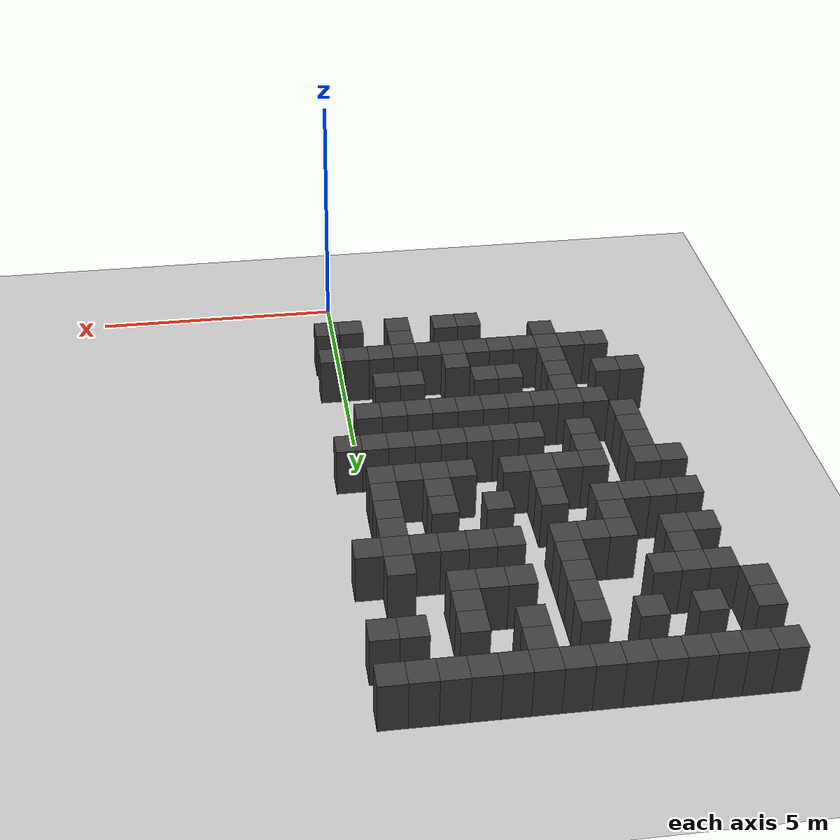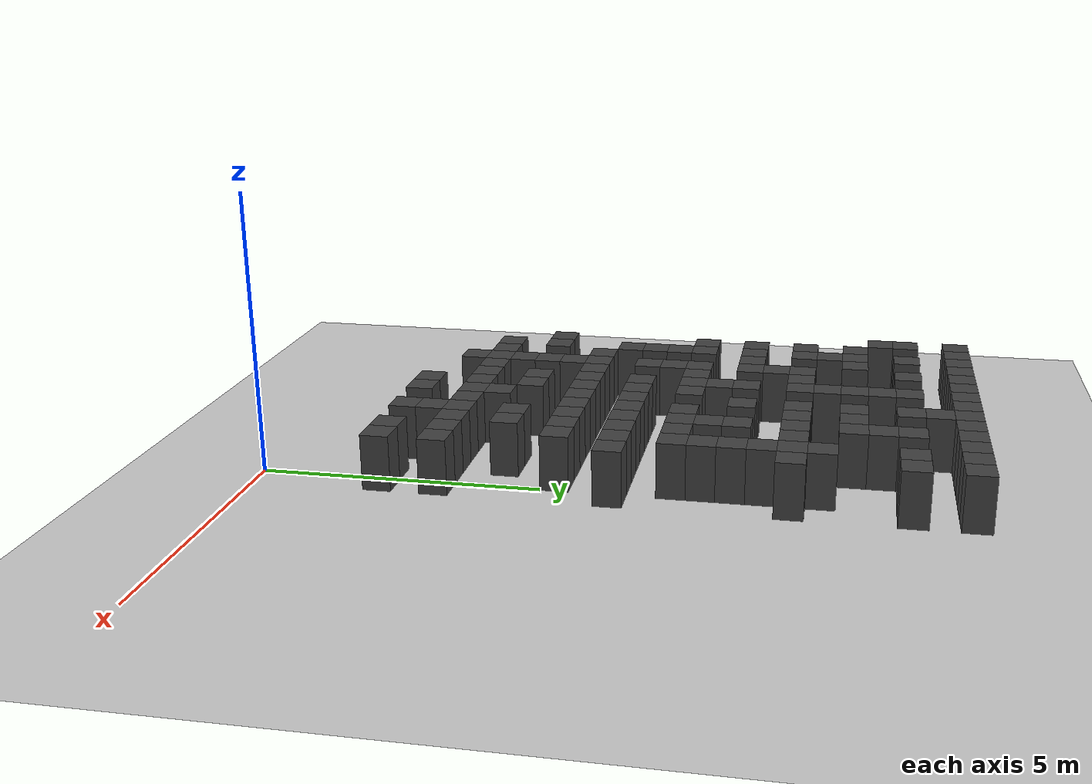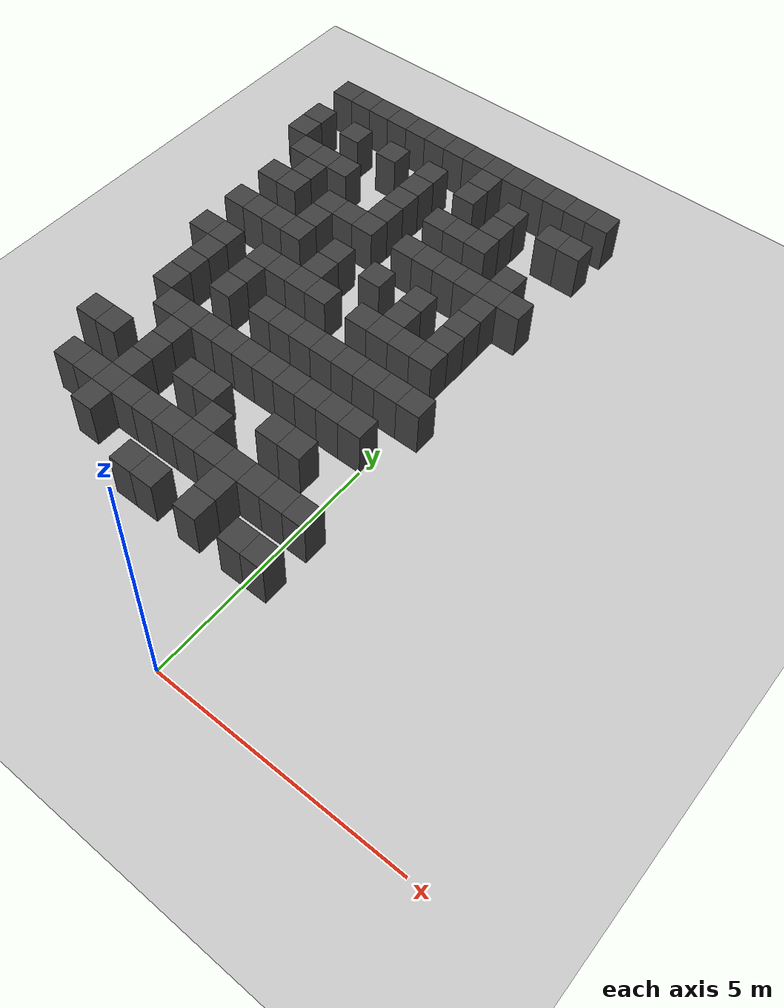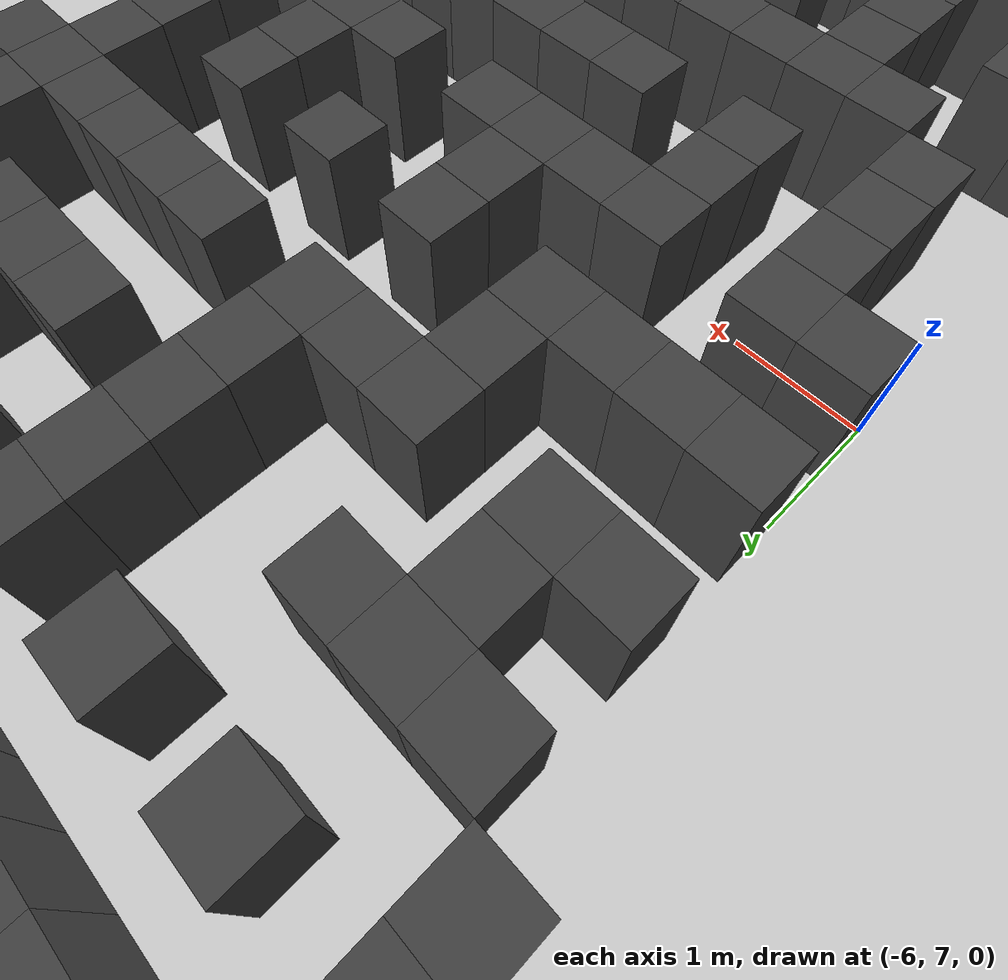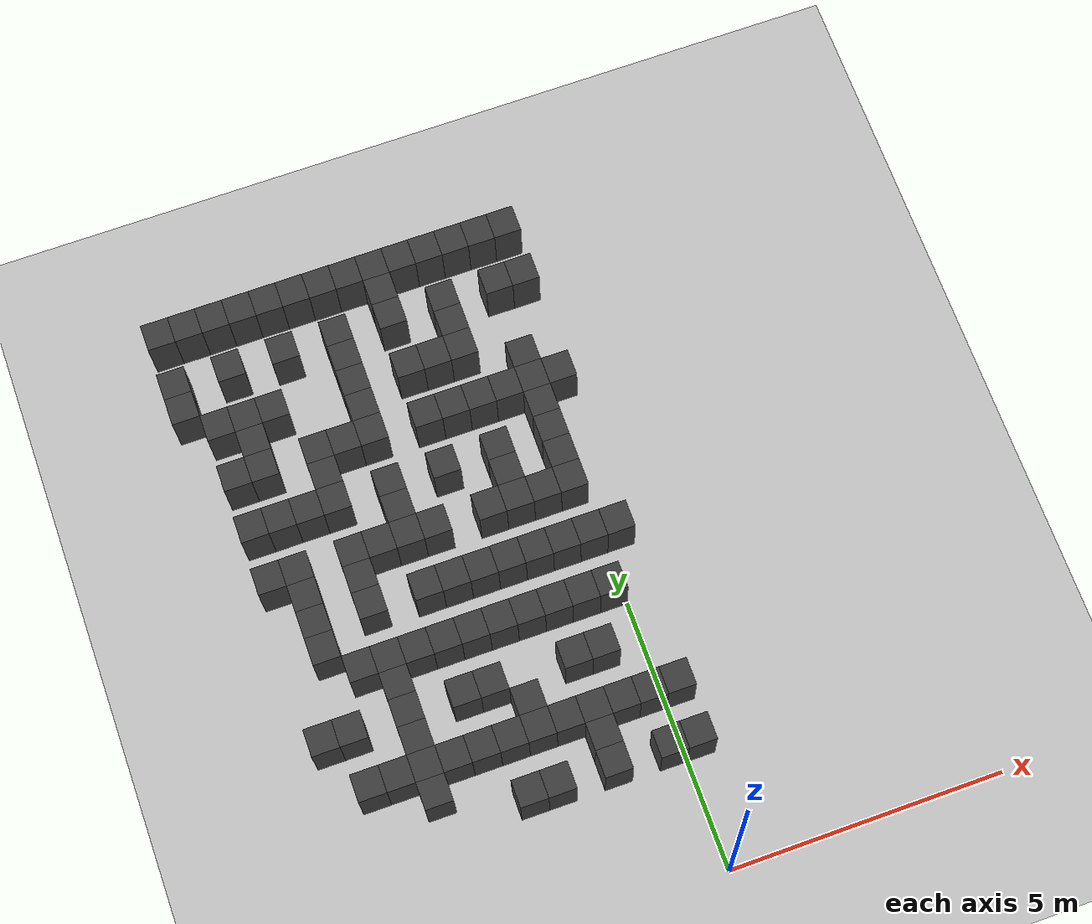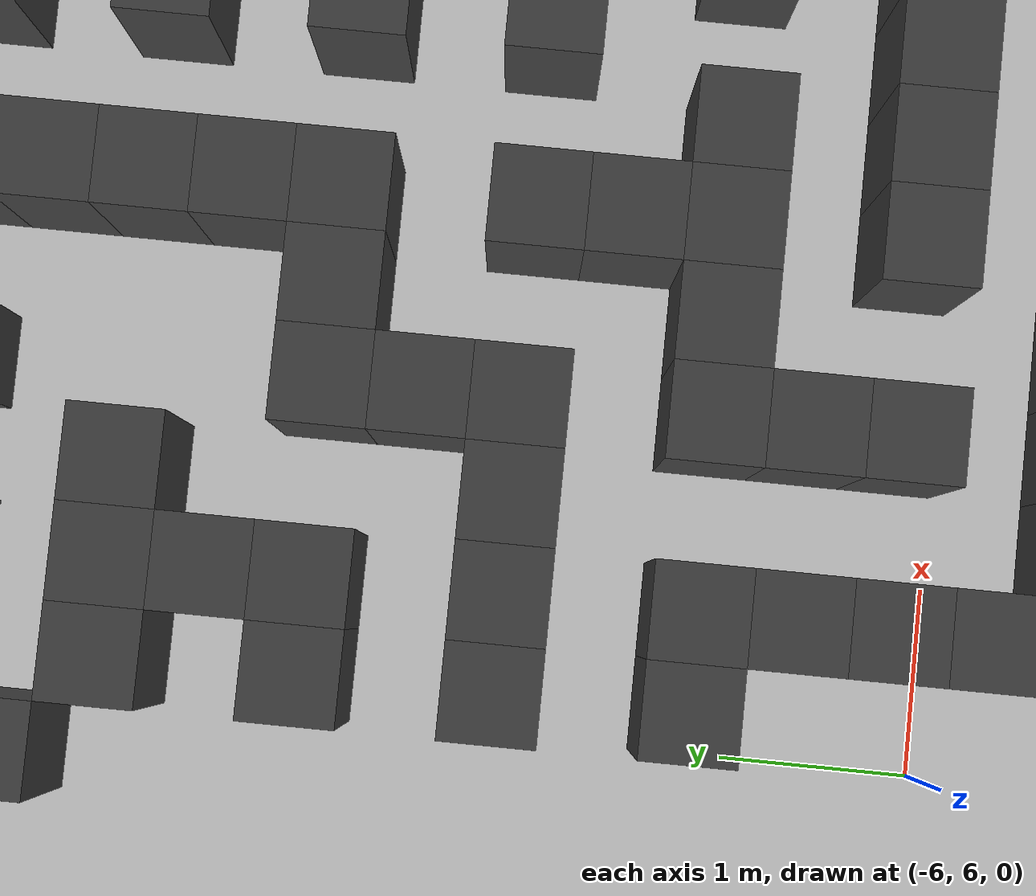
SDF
<sdf version="1.7">
 <world name="map_16048">
  <model name="ground_plane">
   <static>true</static>
   <link name="link">
    <collision name="collision">
     <geometry><plane><normal>0 0 1</normal><size>200 200</size></plane></geometry>
    </collision>
    <visual name="visual">
     <geometry><plane><normal>0 0 1</normal><size>200 200</size></plane></geometry>
     <material><ambient>0.8 0.8 0.8 1</ambient><diffuse>0.8 0.8 0.8 1</diffuse></material>
    </visual>
   </link>
  </model>
  <model name="maze_environment">
   <static>true</static>
   <link name="wall_12">
    <pose>-6.250 12.250 0.500 0 0 0</pose>
    <collision name="col"><geometry><box><size>0.5 0.5 1.0</size></box></geometry></collision>
    <visual name="vis">
     <geometry><box><size>0.5 0.5 1.0</size></box></geometry>
     <material><ambient>0.15 0.15 0.15 1</ambient><diffuse>0.25 0.25 0.25 1</diffuse></material>
    </visual>
   </link>
   <link name="wall_13">
    <pose>-5.750 12.250 0.500 0 0 0</pose>
    <collision name="col"><geometry><box><size>0.5 0.5 1.0</size></box></geometry></collision>
    <visual name="vis">
     <geometry><box><size>0.5 0.5 1.0</size></box></geometry>
     <material><ambient>0.15 0.15 0.15 1</ambient><diffuse>0.25 0.25 0.25 1</diffuse></material>
    </visual>
   </link>
   <link name="wall_14">
    <pose>-5.250 12.250 0.500 0 0 0</pose>
    <collision name="col"><geometry><box><size>0.5 0.5 1.0</size></box></geometry></collision>
    <visual name="vis">
     <geometry><box><size>0.5 0.5 1.0</size></box></geometry>
     <material><ambient>0.15 0.15 0.15 1</ambient><diffuse>0.25 0.25 0.25 1</diffuse></material>
    </visual>
   </link>
   <link name="wall_15">
    <pose>-4.750 12.250 0.500 0 0 0</pose>
    <collision name="col"><geometry><box><size>0.5 0.5 1.0</size></box></geometry></collision>
    <visual name="vis">
     <geometry><box><size>0.5 0.5 1.0</size></box></geometry>
     <material><ambient>0.15 0.15 0.15 1</ambient><diffuse>0.25 0.25 0.25 1</diffuse></material>
    </visual>
   </link>
   <link name="wall_16">
    <pose>-4.250 12.250 0.500 0 0 0</pose>
    <collision name="col"><geometry><box><size>0.5 0.5 1.0</size></box></geometry></collision>
    <visual name="vis">
     <geometry><box><size>0.5 0.5 1.0</size></box></geometry>
     <material><ambient>0.15 0.15 0.15 1</ambient><diffuse>0.25 0.25 0.25 1</diffuse></material>
    </visual>
   </link>
   <link name="wall_17">
    <pose>-3.750 12.250 0.500 0 0 0</pose>
    <collision name="col"><geometry><box><size>0.5 0.5 1.0</size></box></geometry></collision>
    <visual name="vis">
     <geometry><box><size>0.5 0.5 1.0</size></box></geometry>
     <material><ambient>0.15 0.15 0.15 1</ambient><diffuse>0.25 0.25 0.25 1</diffuse></material>
    </visual>
   </link>
   <link name="wall_18">
    <pose>-3.250 12.250 0.500 0 0 0</pose>
    <collision name="col"><geometry><box><size>0.5 0.5 1.0</size></box></geometry></collision>
    <visual name="vis">
     <geometry><box><size>0.5 0.5 1.0</size></box></geometry>
     <material><ambient>0.15 0.15 0.15 1</ambient><diffuse>0.25 0.25 0.25 1</diffuse></material>
    </visual>
   </link>
   <link name="wall_19">
    <pose>-2.750 12.250 0.500 0 0 0</pose>
    <collision name="col"><geometry><box><size>0.5 0.5 1.0</size></box></geometry></collision>
    <visual name="vis">
     <geometry><box><size>0.5 0.5 1.0</size></box></geometry>
     <material><ambient>0.15 0.15 0.15 1</ambient><diffuse>0.25 0.25 0.25 1</diffuse></material>
    </visual>
   </link>
   <link name="wall_20">
    <pose>-2.250 12.250 0.500 0 0 0</pose>
    <collision name="col"><geometry><box><size>0.5 0.5 1.0</size></box></geometry></collision>
    <visual name="vis">
     <geometry><box><size>0.5 0.5 1.0</size></box></geometry>
     <material><ambient>0.15 0.15 0.15 1</ambient><diffuse>0.25 0.25 0.25 1</diffuse></material>
    </visual>
   </link>
   <link name="wall_21">
    <pose>-1.750 12.250 0.500 0 0 0</pose>
    <collision name="col"><geometry><box><size>0.5 0.5 1.0</size></box></geometry></collision>
    <visual name="vis">
     <geometry><box><size>0.5 0.5 1.0</size></box></geometry>
     <material><ambient>0.15 0.15 0.15 1</ambient><diffuse>0.25 0.25 0.25 1</diffuse></material>
    </visual>
   </link>
   <link name="wall_22">
    <pose>-1.250 12.250 0.500 0 0 0</pose>
    <collision name="col"><geometry><box><size>0.5 0.5 1.0</size></box></geometry></collision>
    <visual name="vis">
     <geometry><box><size>0.5 0.5 1.0</size></box></geometry>
     <material><ambient>0.15 0.15 0.15 1</ambient><diffuse>0.25 0.25 0.25 1</diffuse></material>
    </visual>
   </link>
   <link name="wall_23">
    <pose>-0.750 12.250 0.500 0 0 0</pose>
    <collision name="col"><geometry><box><size>0.5 0.5 1.0</size></box></geometry></collision>
    <visual name="vis">
     <geometry><box><size>0.5 0.5 1.0</size></box></geometry>
     <material><ambient>0.15 0.15 0.15 1</ambient><diffuse>0.25 0.25 0.25 1</diffuse></material>
    </visual>
   </link>
   <link name="wall_24">
    <pose>-0.250 12.250 0.500 0 0 0</pose>
    <collision name="col"><geometry><box><size>0.5 0.5 1.0</size></box></geometry></collision>
    <visual name="vis">
     <geometry><box><size>0.5 0.5 1.0</size></box></geometry>
     <material><ambient>0.15 0.15 0.15 1</ambient><diffuse>0.25 0.25 0.25 1</diffuse></material>
    </visual>
   </link>
   <link name="wall_25">
    <pose>0.250 12.250 0.500 0 0 0</pose>
    <collision name="col"><geometry><box><size>0.5 0.5 1.0</size></box></geometry></collision>
    <visual name="vis">
     <geometry><box><size>0.5 0.5 1.0</size></box></geometry>
     <material><ambient>0.15 0.15 0.15 1</ambient><diffuse>0.25 0.25 0.25 1</diffuse></material>
    </visual>
   </link>
   <link name="wall_53">
    <pose>-2.250 11.750 0.500 0 0 0</pose>
    <collision name="col"><geometry><box><size>0.5 0.5 1.0</size></box></geometry></collision>
    <visual name="vis">
     <geometry><box><size>0.5 0.5 1.0</size></box></geometry>
     <material><ambient>0.15 0.15 0.15 1</ambient><diffuse>0.25 0.25 0.25 1</diffuse></material>
    </visual>
   </link>
   <link name="wall_65">
    <pose>-6.250 11.250 0.500 0 0 0</pose>
    <collision name="col"><geometry><box><size>0.5 0.5 1.0</size></box></geometry></collision>
    <visual name="vis">
     <geometry><box><size>0.5 0.5 1.0</size></box></geometry>
     <material><ambient>0.15 0.15 0.15 1</ambient><diffuse>0.25 0.25 0.25 1</diffuse></material>
    </visual>
   </link>
   <link name="wall_66">
    <pose>-5.250 11.250 0.500 0 0 0</pose>
    <collision name="col"><geometry><box><size>0.5 0.5 1.0</size></box></geometry></collision>
    <visual name="vis">
     <geometry><box><size>0.5 0.5 1.0</size></box></geometry>
     <material><ambient>0.15 0.15 0.15 1</ambient><diffuse>0.25 0.25 0.25 1</diffuse></material>
    </visual>
   </link>
   <link name="wall_67">
    <pose>-4.250 11.250 0.500 0 0 0</pose>
    <collision name="col"><geometry><box><size>0.5 0.5 1.0</size></box></geometry></collision>
    <visual name="vis">
     <geometry><box><size>0.5 0.5 1.0</size></box></geometry>
     <material><ambient>0.15 0.15 0.15 1</ambient><diffuse>0.25 0.25 0.25 1</diffuse></material>
    </visual>
   </link>
   <link name="wall_68">
    <pose>-3.250 11.250 0.500 0 0 0</pose>
    <collision name="col"><geometry><box><size>0.5 0.5 1.0</size></box></geometry></collision>
    <visual name="vis">
     <geometry><box><size>0.5 0.5 1.0</size></box></geometry>
     <material><ambient>0.15 0.15 0.15 1</ambient><diffuse>0.25 0.25 0.25 1</diffuse></material>
    </visual>
   </link>
   <link name="wall_69">
    <pose>-2.250 11.250 0.500 0 0 0</pose>
    <collision name="col"><geometry><box><size>0.5 0.5 1.0</size></box></geometry></collision>
    <visual name="vis">
     <geometry><box><size>0.5 0.5 1.0</size></box></geometry>
     <material><ambient>0.15 0.15 0.15 1</ambient><diffuse>0.25 0.25 0.25 1</diffuse></material>
    </visual>
   </link>
   <link name="wall_70">
    <pose>-1.250 11.250 0.500 0 0 0</pose>
    <collision name="col"><geometry><box><size>0.5 0.5 1.0</size></box></geometry></collision>
    <visual name="vis">
     <geometry><box><size>0.5 0.5 1.0</size></box></geometry>
     <material><ambient>0.15 0.15 0.15 1</ambient><diffuse>0.25 0.25 0.25 1</diffuse></material>
    </visual>
   </link>
   <link name="wall_71">
    <pose>-0.250 11.250 0.500 0 0 0</pose>
    <collision name="col"><geometry><box><size>0.5 0.5 1.0</size></box></geometry></collision>
    <visual name="vis">
     <geometry><box><size>0.5 0.5 1.0</size></box></geometry>
     <material><ambient>0.15 0.15 0.15 1</ambient><diffuse>0.25 0.25 0.25 1</diffuse></material>
    </visual>
   </link>
   <link name="wall_72">
    <pose>0.250 11.250 0.500 0 0 0</pose>
    <collision name="col"><geometry><box><size>0.5 0.5 1.0</size></box></geometry></collision>
    <visual name="vis">
     <geometry><box><size>0.5 0.5 1.0</size></box></geometry>
     <material><ambient>0.15 0.15 0.15 1</ambient><diffuse>0.25 0.25 0.25 1</diffuse></material>
    </visual>
   </link>
   <link name="wall_96">
    <pose>-6.250 10.750 0.500 0 0 0</pose>
    <collision name="col"><geometry><box><size>0.5 0.5 1.0</size></box></geometry></collision>
    <visual name="vis">
     <geometry><box><size>0.5 0.5 1.0</size></box></geometry>
     <material><ambient>0.15 0.15 0.15 1</ambient><diffuse>0.25 0.25 0.25 1</diffuse></material>
    </visual>
   </link>
   <link name="wall_97">
    <pose>-3.250 10.750 0.500 0 0 0</pose>
    <collision name="col"><geometry><box><size>0.5 0.5 1.0</size></box></geometry></collision>
    <visual name="vis">
     <geometry><box><size>0.5 0.5 1.0</size></box></geometry>
     <material><ambient>0.15 0.15 0.15 1</ambient><diffuse>0.25 0.25 0.25 1</diffuse></material>
    </visual>
   </link>
   <link name="wall_98">
    <pose>-1.250 10.750 0.500 0 0 0</pose>
    <collision name="col"><geometry><box><size>0.5 0.5 1.0</size></box></geometry></collision>
    <visual name="vis">
     <geometry><box><size>0.5 0.5 1.0</size></box></geometry>
     <material><ambient>0.15 0.15 0.15 1</ambient><diffuse>0.25 0.25 0.25 1</diffuse></material>
    </visual>
   </link>
   <link name="wall_113">
    <pose>-5.750 10.250 0.500 0 0 0</pose>
    <collision name="col"><geometry><box><size>0.5 0.5 1.0</size></box></geometry></collision>
    <visual name="vis">
     <geometry><box><size>0.5 0.5 1.0</size></box></geometry>
     <material><ambient>0.15 0.15 0.15 1</ambient><diffuse>0.25 0.25 0.25 1</diffuse></material>
    </visual>
   </link>
   <link name="wall_114">
    <pose>-5.250 10.250 0.500 0 0 0</pose>
    <collision name="col"><geometry><box><size>0.5 0.5 1.0</size></box></geometry></collision>
    <visual name="vis">
     <geometry><box><size>0.5 0.5 1.0</size></box></geometry>
     <material><ambient>0.15 0.15 0.15 1</ambient><diffuse>0.25 0.25 0.25 1</diffuse></material>
    </visual>
   </link>
   <link name="wall_115">
    <pose>-4.750 10.250 0.500 0 0 0</pose>
    <collision name="col"><geometry><box><size>0.5 0.5 1.0</size></box></geometry></collision>
    <visual name="vis">
     <geometry><box><size>0.5 0.5 1.0</size></box></geometry>
     <material><ambient>0.15 0.15 0.15 1</ambient><diffuse>0.25 0.25 0.25 1</diffuse></material>
    </visual>
   </link>
   <link name="wall_116">
    <pose>-3.250 10.250 0.500 0 0 0</pose>
    <collision name="col"><geometry><box><size>0.5 0.5 1.0</size></box></geometry></collision>
    <visual name="vis">
     <geometry><box><size>0.5 0.5 1.0</size></box></geometry>
     <material><ambient>0.15 0.15 0.15 1</ambient><diffuse>0.25 0.25 0.25 1</diffuse></material>
    </visual>
   </link>
   <link name="wall_117">
    <pose>-2.250 10.250 0.500 0 0 0</pose>
    <collision name="col"><geometry><box><size>0.5 0.5 1.0</size></box></geometry></collision>
    <visual name="vis">
     <geometry><box><size>0.5 0.5 1.0</size></box></geometry>
     <material><ambient>0.15 0.15 0.15 1</ambient><diffuse>0.25 0.25 0.25 1</diffuse></material>
    </visual>
   </link>
   <link name="wall_118">
    <pose>-1.750 10.250 0.500 0 0 0</pose>
    <collision name="col"><geometry><box><size>0.5 0.5 1.0</size></box></geometry></collision>
    <visual name="vis">
     <geometry><box><size>0.5 0.5 1.0</size></box></geometry>
     <material><ambient>0.15 0.15 0.15 1</ambient><diffuse>0.25 0.25 0.25 1</diffuse></material>
    </visual>
   </link>
   <link name="wall_119">
    <pose>-1.250 10.250 0.500 0 0 0</pose>
    <collision name="col"><geometry><box><size>0.5 0.5 1.0</size></box></geometry></collision>
    <visual name="vis">
     <geometry><box><size>0.5 0.5 1.0</size></box></geometry>
     <material><ambient>0.15 0.15 0.15 1</ambient><diffuse>0.25 0.25 0.25 1</diffuse></material>
    </visual>
   </link>
   <link name="wall_139">
    <pose>-5.250 9.750 0.500 0 0 0</pose>
    <collision name="col"><geometry><box><size>0.5 0.5 1.0</size></box></geometry></collision>
    <visual name="vis">
     <geometry><box><size>0.5 0.5 1.0</size></box></geometry>
     <material><ambient>0.15 0.15 0.15 1</ambient><diffuse>0.25 0.25 0.25 1</diffuse></material>
    </visual>
   </link>
   <link name="wall_140">
    <pose>-3.250 9.750 0.500 0 0 0</pose>
    <collision name="col"><geometry><box><size>0.5 0.5 1.0</size></box></geometry></collision>
    <visual name="vis">
     <geometry><box><size>0.5 0.5 1.0</size></box></geometry>
     <material><ambient>0.15 0.15 0.15 1</ambient><diffuse>0.25 0.25 0.25 1</diffuse></material>
    </visual>
   </link>
   <link name="wall_141">
    <pose>-0.250 9.750 0.500 0 0 0</pose>
    <collision name="col"><geometry><box><size>0.5 0.5 1.0</size></box></geometry></collision>
    <visual name="vis">
     <geometry><box><size>0.5 0.5 1.0</size></box></geometry>
     <material><ambient>0.15 0.15 0.15 1</ambient><diffuse>0.25 0.25 0.25 1</diffuse></material>
    </visual>
   </link>
   <link name="wall_162">
    <pose>-5.750 9.250 0.500 0 0 0</pose>
    <collision name="col"><geometry><box><size>0.5 0.5 1.0</size></box></geometry></collision>
    <visual name="vis">
     <geometry><box><size>0.5 0.5 1.0</size></box></geometry>
     <material><ambient>0.15 0.15 0.15 1</ambient><diffuse>0.25 0.25 0.25 1</diffuse></material>
    </visual>
   </link>
   <link name="wall_163">
    <pose>-5.250 9.250 0.500 0 0 0</pose>
    <collision name="col"><geometry><box><size>0.5 0.5 1.0</size></box></geometry></collision>
    <visual name="vis">
     <geometry><box><size>0.5 0.5 1.0</size></box></geometry>
     <material><ambient>0.15 0.15 0.15 1</ambient><diffuse>0.25 0.25 0.25 1</diffuse></material>
    </visual>
   </link>
   <link name="wall_164">
    <pose>-4.250 9.250 0.500 0 0 0</pose>
    <collision name="col"><geometry><box><size>0.5 0.5 1.0</size></box></geometry></collision>
    <visual name="vis">
     <geometry><box><size>0.5 0.5 1.0</size></box></geometry>
     <material><ambient>0.15 0.15 0.15 1</ambient><diffuse>0.25 0.25 0.25 1</diffuse></material>
    </visual>
   </link>
   <link name="wall_165">
    <pose>-3.750 9.250 0.500 0 0 0</pose>
    <collision name="col"><geometry><box><size>0.5 0.5 1.0</size></box></geometry></collision>
    <visual name="vis">
     <geometry><box><size>0.5 0.5 1.0</size></box></geometry>
     <material><ambient>0.15 0.15 0.15 1</ambient><diffuse>0.25 0.25 0.25 1</diffuse></material>
    </visual>
   </link>
   <link name="wall_166">
    <pose>-3.250 9.250 0.500 0 0 0</pose>
    <collision name="col"><geometry><box><size>0.5 0.5 1.0</size></box></geometry></collision>
    <visual name="vis">
     <geometry><box><size>0.5 0.5 1.0</size></box></geometry>
     <material><ambient>0.15 0.15 0.15 1</ambient><diffuse>0.25 0.25 0.25 1</diffuse></material>
    </visual>
   </link>
   <link name="wall_167">
    <pose>-2.250 9.250 0.500 0 0 0</pose>
    <collision name="col"><geometry><box><size>0.5 0.5 1.0</size></box></geometry></collision>
    <visual name="vis">
     <geometry><box><size>0.5 0.5 1.0</size></box></geometry>
     <material><ambient>0.15 0.15 0.15 1</ambient><diffuse>0.25 0.25 0.25 1</diffuse></material>
    </visual>
   </link>
   <link name="wall_168">
    <pose>-1.750 9.250 0.500 0 0 0</pose>
    <collision name="col"><geometry><box><size>0.5 0.5 1.0</size></box></geometry></collision>
    <visual name="vis">
     <geometry><box><size>0.5 0.5 1.0</size></box></geometry>
     <material><ambient>0.15 0.15 0.15 1</ambient><diffuse>0.25 0.25 0.25 1</diffuse></material>
    </visual>
   </link>
   <link name="wall_169">
    <pose>-1.250 9.250 0.500 0 0 0</pose>
    <collision name="col"><geometry><box><size>0.5 0.5 1.0</size></box></geometry></collision>
    <visual name="vis">
     <geometry><box><size>0.5 0.5 1.0</size></box></geometry>
     <material><ambient>0.15 0.15 0.15 1</ambient><diffuse>0.25 0.25 0.25 1</diffuse></material>
    </visual>
   </link>
   <link name="wall_170">
    <pose>-0.750 9.250 0.500 0 0 0</pose>
    <collision name="col"><geometry><box><size>0.5 0.5 1.0</size></box></geometry></collision>
    <visual name="vis">
     <geometry><box><size>0.5 0.5 1.0</size></box></geometry>
     <material><ambient>0.15 0.15 0.15 1</ambient><diffuse>0.25 0.25 0.25 1</diffuse></material>
    </visual>
   </link>
   <link name="wall_171">
    <pose>-0.250 9.250 0.500 0 0 0</pose>
    <collision name="col"><geometry><box><size>0.5 0.5 1.0</size></box></geometry></collision>
    <visual name="vis">
     <geometry><box><size>0.5 0.5 1.0</size></box></geometry>
     <material><ambient>0.15 0.15 0.15 1</ambient><diffuse>0.25 0.25 0.25 1</diffuse></material>
    </visual>
   </link>
   <link name="wall_172">
    <pose>0.250 9.250 0.500 0 0 0</pose>
    <collision name="col"><geometry><box><size>0.5 0.5 1.0</size></box></geometry></collision>
    <visual name="vis">
     <geometry><box><size>0.5 0.5 1.0</size></box></geometry>
     <material><ambient>0.15 0.15 0.15 1</ambient><diffuse>0.25 0.25 0.25 1</diffuse></material>
    </visual>
   </link>
   <link name="wall_191">
    <pose>-4.250 8.750 0.500 0 0 0</pose>
    <collision name="col"><geometry><box><size>0.5 0.5 1.0</size></box></geometry></collision>
    <visual name="vis">
     <geometry><box><size>0.5 0.5 1.0</size></box></geometry>
     <material><ambient>0.15 0.15 0.15 1</ambient><diffuse>0.25 0.25 0.25 1</diffuse></material>
    </visual>
   </link>
   <link name="wall_192">
    <pose>-0.250 8.750 0.500 0 0 0</pose>
    <collision name="col"><geometry><box><size>0.5 0.5 1.0</size></box></geometry></collision>
    <visual name="vis">
     <geometry><box><size>0.5 0.5 1.0</size></box></geometry>
     <material><ambient>0.15 0.15 0.15 1</ambient><diffuse>0.25 0.25 0.25 1</diffuse></material>
    </visual>
   </link>
   <link name="wall_208">
    <pose>-5.750 8.250 0.500 0 0 0</pose>
    <collision name="col"><geometry><box><size>0.5 0.5 1.0</size></box></geometry></collision>
    <visual name="vis">
     <geometry><box><size>0.5 0.5 1.0</size></box></geometry>
     <material><ambient>0.15 0.15 0.15 1</ambient><diffuse>0.25 0.25 0.25 1</diffuse></material>
    </visual>
   </link>
   <link name="wall_209">
    <pose>-5.250 8.250 0.500 0 0 0</pose>
    <collision name="col"><geometry><box><size>0.5 0.5 1.0</size></box></geometry></collision>
    <visual name="vis">
     <geometry><box><size>0.5 0.5 1.0</size></box></geometry>
     <material><ambient>0.15 0.15 0.15 1</ambient><diffuse>0.25 0.25 0.25 1</diffuse></material>
    </visual>
   </link>
   <link name="wall_210">
    <pose>-4.750 8.250 0.500 0 0 0</pose>
    <collision name="col"><geometry><box><size>0.5 0.5 1.0</size></box></geometry></collision>
    <visual name="vis">
     <geometry><box><size>0.5 0.5 1.0</size></box></geometry>
     <material><ambient>0.15 0.15 0.15 1</ambient><diffuse>0.25 0.25 0.25 1</diffuse></material>
    </visual>
   </link>
   <link name="wall_211">
    <pose>-4.250 8.250 0.500 0 0 0</pose>
    <collision name="col"><geometry><box><size>0.5 0.5 1.0</size></box></geometry></collision>
    <visual name="vis">
     <geometry><box><size>0.5 0.5 1.0</size></box></geometry>
     <material><ambient>0.15 0.15 0.15 1</ambient><diffuse>0.25 0.25 0.25 1</diffuse></material>
    </visual>
   </link>
   <link name="wall_212">
    <pose>-3.250 8.250 0.500 0 0 0</pose>
    <collision name="col"><geometry><box><size>0.5 0.5 1.0</size></box></geometry></collision>
    <visual name="vis">
     <geometry><box><size>0.5 0.5 1.0</size></box></geometry>
     <material><ambient>0.15 0.15 0.15 1</ambient><diffuse>0.25 0.25 0.25 1</diffuse></material>
    </visual>
   </link>
   <link name="wall_213">
    <pose>-2.250 8.250 0.500 0 0 0</pose>
    <collision name="col"><geometry><box><size>0.5 0.5 1.0</size></box></geometry></collision>
    <visual name="vis">
     <geometry><box><size>0.5 0.5 1.0</size></box></geometry>
     <material><ambient>0.15 0.15 0.15 1</ambient><diffuse>0.25 0.25 0.25 1</diffuse></material>
    </visual>
   </link>
   <link name="wall_214">
    <pose>-1.250 8.250 0.500 0 0 0</pose>
    <collision name="col"><geometry><box><size>0.5 0.5 1.0</size></box></geometry></collision>
    <visual name="vis">
     <geometry><box><size>0.5 0.5 1.0</size></box></geometry>
     <material><ambient>0.15 0.15 0.15 1</ambient><diffuse>0.25 0.25 0.25 1</diffuse></material>
    </visual>
   </link>
   <link name="wall_215">
    <pose>-0.250 8.250 0.500 0 0 0</pose>
    <collision name="col"><geometry><box><size>0.5 0.5 1.0</size></box></geometry></collision>
    <visual name="vis">
     <geometry><box><size>0.5 0.5 1.0</size></box></geometry>
     <material><ambient>0.15 0.15 0.15 1</ambient><diffuse>0.25 0.25 0.25 1</diffuse></material>
    </visual>
   </link>
   <link name="wall_237">
    <pose>-3.250 7.750 0.500 0 0 0</pose>
    <collision name="col"><geometry><box><size>0.5 0.5 1.0</size></box></geometry></collision>
    <visual name="vis">
     <geometry><box><size>0.5 0.5 1.0</size></box></geometry>
     <material><ambient>0.15 0.15 0.15 1</ambient><diffuse>0.25 0.25 0.25 1</diffuse></material>
    </visual>
   </link>
   <link name="wall_238">
    <pose>-1.250 7.750 0.500 0 0 0</pose>
    <collision name="col"><geometry><box><size>0.5 0.5 1.0</size></box></geometry></collision>
    <visual name="vis">
     <geometry><box><size>0.5 0.5 1.0</size></box></geometry>
     <material><ambient>0.15 0.15 0.15 1</ambient><diffuse>0.25 0.25 0.25 1</diffuse></material>
    </visual>
   </link>
   <link name="wall_239">
    <pose>-0.250 7.750 0.500 0 0 0</pose>
    <collision name="col"><geometry><box><size>0.5 0.5 1.0</size></box></geometry></collision>
    <visual name="vis">
     <geometry><box><size>0.5 0.5 1.0</size></box></geometry>
     <material><ambient>0.15 0.15 0.15 1</ambient><diffuse>0.25 0.25 0.25 1</diffuse></material>
    </visual>
   </link>
   <link name="wall_254">
    <pose>-5.750 7.250 0.500 0 0 0</pose>
    <collision name="col"><geometry><box><size>0.5 0.5 1.0</size></box></geometry></collision>
    <visual name="vis">
     <geometry><box><size>0.5 0.5 1.0</size></box></geometry>
     <material><ambient>0.15 0.15 0.15 1</ambient><diffuse>0.25 0.25 0.25 1</diffuse></material>
    </visual>
   </link>
   <link name="wall_255">
    <pose>-5.250 7.250 0.500 0 0 0</pose>
    <collision name="col"><geometry><box><size>0.5 0.5 1.0</size></box></geometry></collision>
    <visual name="vis">
     <geometry><box><size>0.5 0.5 1.0</size></box></geometry>
     <material><ambient>0.15 0.15 0.15 1</ambient><diffuse>0.25 0.25 0.25 1</diffuse></material>
    </visual>
   </link>
   <link name="wall_256">
    <pose>-4.250 7.250 0.500 0 0 0</pose>
    <collision name="col"><geometry><box><size>0.5 0.5 1.0</size></box></geometry></collision>
    <visual name="vis">
     <geometry><box><size>0.5 0.5 1.0</size></box></geometry>
     <material><ambient>0.15 0.15 0.15 1</ambient><diffuse>0.25 0.25 0.25 1</diffuse></material>
    </visual>
   </link>
   <link name="wall_257">
    <pose>-3.750 7.250 0.500 0 0 0</pose>
    <collision name="col"><geometry><box><size>0.5 0.5 1.0</size></box></geometry></collision>
    <visual name="vis">
     <geometry><box><size>0.5 0.5 1.0</size></box></geometry>
     <material><ambient>0.15 0.15 0.15 1</ambient><diffuse>0.25 0.25 0.25 1</diffuse></material>
    </visual>
   </link>
   <link name="wall_258">
    <pose>-3.250 7.250 0.500 0 0 0</pose>
    <collision name="col"><geometry><box><size>0.5 0.5 1.0</size></box></geometry></collision>
    <visual name="vis">
     <geometry><box><size>0.5 0.5 1.0</size></box></geometry>
     <material><ambient>0.15 0.15 0.15 1</ambient><diffuse>0.25 0.25 0.25 1</diffuse></material>
    </visual>
   </link>
   <link name="wall_259">
    <pose>-2.750 7.250 0.500 0 0 0</pose>
    <collision name="col"><geometry><box><size>0.5 0.5 1.0</size></box></geometry></collision>
    <visual name="vis">
     <geometry><box><size>0.5 0.5 1.0</size></box></geometry>
     <material><ambient>0.15 0.15 0.15 1</ambient><diffuse>0.25 0.25 0.25 1</diffuse></material>
    </visual>
   </link>
   <link name="wall_260">
    <pose>-1.750 7.250 0.500 0 0 0</pose>
    <collision name="col"><geometry><box><size>0.5 0.5 1.0</size></box></geometry></collision>
    <visual name="vis">
     <geometry><box><size>0.5 0.5 1.0</size></box></geometry>
     <material><ambient>0.15 0.15 0.15 1</ambient><diffuse>0.25 0.25 0.25 1</diffuse></material>
    </visual>
   </link>
   <link name="wall_261">
    <pose>-1.250 7.250 0.500 0 0 0</pose>
    <collision name="col"><geometry><box><size>0.5 0.5 1.0</size></box></geometry></collision>
    <visual name="vis">
     <geometry><box><size>0.5 0.5 1.0</size></box></geometry>
     <material><ambient>0.15 0.15 0.15 1</ambient><diffuse>0.25 0.25 0.25 1</diffuse></material>
    </visual>
   </link>
   <link name="wall_262">
    <pose>-0.750 7.250 0.500 0 0 0</pose>
    <collision name="col"><geometry><box><size>0.5 0.5 1.0</size></box></geometry></collision>
    <visual name="vis">
     <geometry><box><size>0.5 0.5 1.0</size></box></geometry>
     <material><ambient>0.15 0.15 0.15 1</ambient><diffuse>0.25 0.25 0.25 1</diffuse></material>
    </visual>
   </link>
   <link name="wall_263">
    <pose>-0.250 7.250 0.500 0 0 0</pose>
    <collision name="col"><geometry><box><size>0.5 0.5 1.0</size></box></geometry></collision>
    <visual name="vis">
     <geometry><box><size>0.5 0.5 1.0</size></box></geometry>
     <material><ambient>0.15 0.15 0.15 1</ambient><diffuse>0.25 0.25 0.25 1</diffuse></material>
    </visual>
   </link>
   <link name="wall_287">
    <pose>-5.250 6.750 0.500 0 0 0</pose>
    <collision name="col"><geometry><box><size>0.5 0.5 1.0</size></box></geometry></collision>
    <visual name="vis">
     <geometry><box><size>0.5 0.5 1.0</size></box></geometry>
     <material><ambient>0.15 0.15 0.15 1</ambient><diffuse>0.25 0.25 0.25 1</diffuse></material>
    </visual>
   </link>
   <link name="wall_288">
    <pose>-4.250 6.750 0.500 0 0 0</pose>
    <collision name="col"><geometry><box><size>0.5 0.5 1.0</size></box></geometry></collision>
    <visual name="vis">
     <geometry><box><size>0.5 0.5 1.0</size></box></geometry>
     <material><ambient>0.15 0.15 0.15 1</ambient><diffuse>0.25 0.25 0.25 1</diffuse></material>
    </visual>
   </link>
   <link name="wall_305">
    <pose>-5.250 6.250 0.500 0 0 0</pose>
    <collision name="col"><geometry><box><size>0.5 0.5 1.0</size></box></geometry></collision>
    <visual name="vis">
     <geometry><box><size>0.5 0.5 1.0</size></box></geometry>
     <material><ambient>0.15 0.15 0.15 1</ambient><diffuse>0.25 0.25 0.25 1</diffuse></material>
    </visual>
   </link>
   <link name="wall_306">
    <pose>-4.250 6.250 0.500 0 0 0</pose>
    <collision name="col"><geometry><box><size>0.5 0.5 1.0</size></box></geometry></collision>
    <visual name="vis">
     <geometry><box><size>0.5 0.5 1.0</size></box></geometry>
     <material><ambient>0.15 0.15 0.15 1</ambient><diffuse>0.25 0.25 0.25 1</diffuse></material>
    </visual>
   </link>
   <link name="wall_307">
    <pose>-3.250 6.250 0.500 0 0 0</pose>
    <collision name="col"><geometry><box><size>0.5 0.5 1.0</size></box></geometry></collision>
    <visual name="vis">
     <geometry><box><size>0.5 0.5 1.0</size></box></geometry>
     <material><ambient>0.15 0.15 0.15 1</ambient><diffuse>0.25 0.25 0.25 1</diffuse></material>
    </visual>
   </link>
   <link name="wall_308">
    <pose>-2.750 6.250 0.500 0 0 0</pose>
    <collision name="col"><geometry><box><size>0.5 0.5 1.0</size></box></geometry></collision>
    <visual name="vis">
     <geometry><box><size>0.5 0.5 1.0</size></box></geometry>
     <material><ambient>0.15 0.15 0.15 1</ambient><diffuse>0.25 0.25 0.25 1</diffuse></material>
    </visual>
   </link>
   <link name="wall_309">
    <pose>-2.250 6.250 0.500 0 0 0</pose>
    <collision name="col"><geometry><box><size>0.5 0.5 1.0</size></box></geometry></collision>
    <visual name="vis">
     <geometry><box><size>0.5 0.5 1.0</size></box></geometry>
     <material><ambient>0.15 0.15 0.15 1</ambient><diffuse>0.25 0.25 0.25 1</diffuse></material>
    </visual>
   </link>
   <link name="wall_310">
    <pose>-1.750 6.250 0.500 0 0 0</pose>
    <collision name="col"><geometry><box><size>0.5 0.5 1.0</size></box></geometry></collision>
    <visual name="vis">
     <geometry><box><size>0.5 0.5 1.0</size></box></geometry>
     <material><ambient>0.15 0.15 0.15 1</ambient><diffuse>0.25 0.25 0.25 1</diffuse></material>
    </visual>
   </link>
   <link name="wall_311">
    <pose>-1.250 6.250 0.500 0 0 0</pose>
    <collision name="col"><geometry><box><size>0.5 0.5 1.0</size></box></geometry></collision>
    <visual name="vis">
     <geometry><box><size>0.5 0.5 1.0</size></box></geometry>
     <material><ambient>0.15 0.15 0.15 1</ambient><diffuse>0.25 0.25 0.25 1</diffuse></material>
    </visual>
   </link>
   <link name="wall_312">
    <pose>-0.750 6.250 0.500 0 0 0</pose>
    <collision name="col"><geometry><box><size>0.5 0.5 1.0</size></box></geometry></collision>
    <visual name="vis">
     <geometry><box><size>0.5 0.5 1.0</size></box></geometry>
     <material><ambient>0.15 0.15 0.15 1</ambient><diffuse>0.25 0.25 0.25 1</diffuse></material>
    </visual>
   </link>
   <link name="wall_313">
    <pose>-0.250 6.250 0.500 0 0 0</pose>
    <collision name="col"><geometry><box><size>0.5 0.5 1.0</size></box></geometry></collision>
    <visual name="vis">
     <geometry><box><size>0.5 0.5 1.0</size></box></geometry>
     <material><ambient>0.15 0.15 0.15 1</ambient><diffuse>0.25 0.25 0.25 1</diffuse></material>
    </visual>
   </link>
   <link name="wall_314">
    <pose>0.250 6.250 0.500 0 0 0</pose>
    <collision name="col"><geometry><box><size>0.5 0.5 1.0</size></box></geometry></collision>
    <visual name="vis">
     <geometry><box><size>0.5 0.5 1.0</size></box></geometry>
     <material><ambient>0.15 0.15 0.15 1</ambient><diffuse>0.25 0.25 0.25 1</diffuse></material>
    </visual>
   </link>
   <link name="wall_336">
    <pose>-5.250 5.750 0.500 0 0 0</pose>
    <collision name="col"><geometry><box><size>0.5 0.5 1.0</size></box></geometry></collision>
    <visual name="vis">
     <geometry><box><size>0.5 0.5 1.0</size></box></geometry>
     <material><ambient>0.15 0.15 0.15 1</ambient><diffuse>0.25 0.25 0.25 1</diffuse></material>
    </visual>
   </link>
   <link name="wall_352">
    <pose>-4.750 5.250 0.500 0 0 0</pose>
    <collision name="col"><geometry><box><size>0.5 0.5 1.0</size></box></geometry></collision>
    <visual name="vis">
     <geometry><box><size>0.5 0.5 1.0</size></box></geometry>
     <material><ambient>0.15 0.15 0.15 1</ambient><diffuse>0.25 0.25 0.25 1</diffuse></material>
    </visual>
   </link>
   <link name="wall_353">
    <pose>-4.250 5.250 0.500 0 0 0</pose>
    <collision name="col"><geometry><box><size>0.5 0.5 1.0</size></box></geometry></collision>
    <visual name="vis">
     <geometry><box><size>0.5 0.5 1.0</size></box></geometry>
     <material><ambient>0.15 0.15 0.15 1</ambient><diffuse>0.25 0.25 0.25 1</diffuse></material>
    </visual>
   </link>
   <link name="wall_354">
    <pose>-3.750 5.250 0.500 0 0 0</pose>
    <collision name="col"><geometry><box><size>0.5 0.5 1.0</size></box></geometry></collision>
    <visual name="vis">
     <geometry><box><size>0.5 0.5 1.0</size></box></geometry>
     <material><ambient>0.15 0.15 0.15 1</ambient><diffuse>0.25 0.25 0.25 1</diffuse></material>
    </visual>
   </link>
   <link name="wall_355">
    <pose>-3.250 5.250 0.500 0 0 0</pose>
    <collision name="col"><geometry><box><size>0.5 0.5 1.0</size></box></geometry></collision>
    <visual name="vis">
     <geometry><box><size>0.5 0.5 1.0</size></box></geometry>
     <material><ambient>0.15 0.15 0.15 1</ambient><diffuse>0.25 0.25 0.25 1</diffuse></material>
    </visual>
   </link>
   <link name="wall_356">
    <pose>-2.750 5.250 0.500 0 0 0</pose>
    <collision name="col"><geometry><box><size>0.5 0.5 1.0</size></box></geometry></collision>
    <visual name="vis">
     <geometry><box><size>0.5 0.5 1.0</size></box></geometry>
     <material><ambient>0.15 0.15 0.15 1</ambient><diffuse>0.25 0.25 0.25 1</diffuse></material>
    </visual>
   </link>
   <link name="wall_357">
    <pose>-2.250 5.250 0.500 0 0 0</pose>
    <collision name="col"><geometry><box><size>0.5 0.5 1.0</size></box></geometry></collision>
    <visual name="vis">
     <geometry><box><size>0.5 0.5 1.0</size></box></geometry>
     <material><ambient>0.15 0.15 0.15 1</ambient><diffuse>0.25 0.25 0.25 1</diffuse></material>
    </visual>
   </link>
   <link name="wall_358">
    <pose>-1.750 5.250 0.500 0 0 0</pose>
    <collision name="col"><geometry><box><size>0.5 0.5 1.0</size></box></geometry></collision>
    <visual name="vis">
     <geometry><box><size>0.5 0.5 1.0</size></box></geometry>
     <material><ambient>0.15 0.15 0.15 1</ambient><diffuse>0.25 0.25 0.25 1</diffuse></material>
    </visual>
   </link>
   <link name="wall_359">
    <pose>-1.250 5.250 0.500 0 0 0</pose>
    <collision name="col"><geometry><box><size>0.5 0.5 1.0</size></box></geometry></collision>
    <visual name="vis">
     <geometry><box><size>0.5 0.5 1.0</size></box></geometry>
     <material><ambient>0.15 0.15 0.15 1</ambient><diffuse>0.25 0.25 0.25 1</diffuse></material>
    </visual>
   </link>
   <link name="wall_360">
    <pose>-0.750 5.250 0.500 0 0 0</pose>
    <collision name="col"><geometry><box><size>0.5 0.5 1.0</size></box></geometry></collision>
    <visual name="vis">
     <geometry><box><size>0.5 0.5 1.0</size></box></geometry>
     <material><ambient>0.15 0.15 0.15 1</ambient><diffuse>0.25 0.25 0.25 1</diffuse></material>
    </visual>
   </link>
   <link name="wall_361">
    <pose>-0.250 5.250 0.500 0 0 0</pose>
    <collision name="col"><geometry><box><size>0.5 0.5 1.0</size></box></geometry></collision>
    <visual name="vis">
     <geometry><box><size>0.5 0.5 1.0</size></box></geometry>
     <material><ambient>0.15 0.15 0.15 1</ambient><diffuse>0.25 0.25 0.25 1</diffuse></material>
    </visual>
   </link>
   <link name="wall_378">
    <pose>-4.250 4.750 0.500 0 0 0</pose>
    <collision name="col"><geometry><box><size>0.5 0.5 1.0</size></box></geometry></collision>
    <visual name="vis">
     <geometry><box><size>0.5 0.5 1.0</size></box></geometry>
     <material><ambient>0.15 0.15 0.15 1</ambient><diffuse>0.25 0.25 0.25 1</diffuse></material>
    </visual>
   </link>
   <link name="wall_395">
    <pose>-5.750 4.250 0.500 0 0 0</pose>
    <collision name="col"><geometry><box><size>0.5 0.5 1.0</size></box></geometry></collision>
    <visual name="vis">
     <geometry><box><size>0.5 0.5 1.0</size></box></geometry>
     <material><ambient>0.15 0.15 0.15 1</ambient><diffuse>0.25 0.25 0.25 1</diffuse></material>
    </visual>
   </link>
   <link name="wall_396">
    <pose>-5.250 4.250 0.500 0 0 0</pose>
    <collision name="col"><geometry><box><size>0.5 0.5 1.0</size></box></geometry></collision>
    <visual name="vis">
     <geometry><box><size>0.5 0.5 1.0</size></box></geometry>
     <material><ambient>0.15 0.15 0.15 1</ambient><diffuse>0.25 0.25 0.25 1</diffuse></material>
    </visual>
   </link>
   <link name="wall_397">
    <pose>-4.250 4.250 0.500 0 0 0</pose>
    <collision name="col"><geometry><box><size>0.5 0.5 1.0</size></box></geometry></collision>
    <visual name="vis">
     <geometry><box><size>0.5 0.5 1.0</size></box></geometry>
     <material><ambient>0.15 0.15 0.15 1</ambient><diffuse>0.25 0.25 0.25 1</diffuse></material>
    </visual>
   </link>
   <link name="wall_398">
    <pose>-3.250 4.250 0.500 0 0 0</pose>
    <collision name="col"><geometry><box><size>0.5 0.5 1.0</size></box></geometry></collision>
    <visual name="vis">
     <geometry><box><size>0.5 0.5 1.0</size></box></geometry>
     <material><ambient>0.15 0.15 0.15 1</ambient><diffuse>0.25 0.25 0.25 1</diffuse></material>
    </visual>
   </link>
   <link name="wall_399">
    <pose>-2.750 4.250 0.500 0 0 0</pose>
    <collision name="col"><geometry><box><size>0.5 0.5 1.0</size></box></geometry></collision>
    <visual name="vis">
     <geometry><box><size>0.5 0.5 1.0</size></box></geometry>
     <material><ambient>0.15 0.15 0.15 1</ambient><diffuse>0.25 0.25 0.25 1</diffuse></material>
    </visual>
   </link>
   <link name="wall_400">
    <pose>-1.250 4.250 0.500 0 0 0</pose>
    <collision name="col"><geometry><box><size>0.5 0.5 1.0</size></box></geometry></collision>
    <visual name="vis">
     <geometry><box><size>0.5 0.5 1.0</size></box></geometry>
     <material><ambient>0.15 0.15 0.15 1</ambient><diffuse>0.25 0.25 0.25 1</diffuse></material>
    </visual>
   </link>
   <link name="wall_401">
    <pose>-0.750 4.250 0.500 0 0 0</pose>
    <collision name="col"><geometry><box><size>0.5 0.5 1.0</size></box></geometry></collision>
    <visual name="vis">
     <geometry><box><size>0.5 0.5 1.0</size></box></geometry>
     <material><ambient>0.15 0.15 0.15 1</ambient><diffuse>0.25 0.25 0.25 1</diffuse></material>
    </visual>
   </link>
   <link name="wall_419">
    <pose>-4.250 3.750 0.500 0 0 0</pose>
    <collision name="col"><geometry><box><size>0.5 0.5 1.0</size></box></geometry></collision>
    <visual name="vis">
     <geometry><box><size>0.5 0.5 1.0</size></box></geometry>
     <material><ambient>0.15 0.15 0.15 1</ambient><diffuse>0.25 0.25 0.25 1</diffuse></material>
    </visual>
   </link>
   <link name="wall_420">
    <pose>-2.250 3.750 0.500 0 0 0</pose>
    <collision name="col"><geometry><box><size>0.5 0.5 1.0</size></box></geometry></collision>
    <visual name="vis">
     <geometry><box><size>0.5 0.5 1.0</size></box></geometry>
     <material><ambient>0.15 0.15 0.15 1</ambient><diffuse>0.25 0.25 0.25 1</diffuse></material>
    </visual>
   </link>
   <link name="wall_438">
    <pose>-5.250 3.250 0.500 0 0 0</pose>
    <collision name="col"><geometry><box><size>0.5 0.5 1.0</size></box></geometry></collision>
    <visual name="vis">
     <geometry><box><size>0.5 0.5 1.0</size></box></geometry>
     <material><ambient>0.15 0.15 0.15 1</ambient><diffuse>0.25 0.25 0.25 1</diffuse></material>
    </visual>
   </link>
   <link name="wall_439">
    <pose>-4.750 3.250 0.500 0 0 0</pose>
    <collision name="col"><geometry><box><size>0.5 0.5 1.0</size></box></geometry></collision>
    <visual name="vis">
     <geometry><box><size>0.5 0.5 1.0</size></box></geometry>
     <material><ambient>0.15 0.15 0.15 1</ambient><diffuse>0.25 0.25 0.25 1</diffuse></material>
    </visual>
   </link>
   <link name="wall_440">
    <pose>-4.250 3.250 0.500 0 0 0</pose>
    <collision name="col"><geometry><box><size>0.5 0.5 1.0</size></box></geometry></collision>
    <visual name="vis">
     <geometry><box><size>0.5 0.5 1.0</size></box></geometry>
     <material><ambient>0.15 0.15 0.15 1</ambient><diffuse>0.25 0.25 0.25 1</diffuse></material>
    </visual>
   </link>
   <link name="wall_441">
    <pose>-3.750 3.250 0.500 0 0 0</pose>
    <collision name="col"><geometry><box><size>0.5 0.5 1.0</size></box></geometry></collision>
    <visual name="vis">
     <geometry><box><size>0.5 0.5 1.0</size></box></geometry>
     <material><ambient>0.15 0.15 0.15 1</ambient><diffuse>0.25 0.25 0.25 1</diffuse></material>
    </visual>
   </link>
   <link name="wall_442">
    <pose>-3.250 3.250 0.500 0 0 0</pose>
    <collision name="col"><geometry><box><size>0.5 0.5 1.0</size></box></geometry></collision>
    <visual name="vis">
     <geometry><box><size>0.5 0.5 1.0</size></box></geometry>
     <material><ambient>0.15 0.15 0.15 1</ambient><diffuse>0.25 0.25 0.25 1</diffuse></material>
    </visual>
   </link>
   <link name="wall_443">
    <pose>-2.750 3.250 0.500 0 0 0</pose>
    <collision name="col"><geometry><box><size>0.5 0.5 1.0</size></box></geometry></collision>
    <visual name="vis">
     <geometry><box><size>0.5 0.5 1.0</size></box></geometry>
     <material><ambient>0.15 0.15 0.15 1</ambient><diffuse>0.25 0.25 0.25 1</diffuse></material>
    </visual>
   </link>
   <link name="wall_444">
    <pose>-2.250 3.250 0.500 0 0 0</pose>
    <collision name="col"><geometry><box><size>0.5 0.5 1.0</size></box></geometry></collision>
    <visual name="vis">
     <geometry><box><size>0.5 0.5 1.0</size></box></geometry>
     <material><ambient>0.15 0.15 0.15 1</ambient><diffuse>0.25 0.25 0.25 1</diffuse></material>
    </visual>
   </link>
   <link name="wall_445">
    <pose>-1.750 3.250 0.500 0 0 0</pose>
    <collision name="col"><geometry><box><size>0.5 0.5 1.0</size></box></geometry></collision>
    <visual name="vis">
     <geometry><box><size>0.5 0.5 1.0</size></box></geometry>
     <material><ambient>0.15 0.15 0.15 1</ambient><diffuse>0.25 0.25 0.25 1</diffuse></material>
    </visual>
   </link>
   <link name="wall_446">
    <pose>-1.250 3.250 0.500 0 0 0</pose>
    <collision name="col"><geometry><box><size>0.5 0.5 1.0</size></box></geometry></collision>
    <visual name="vis">
     <geometry><box><size>0.5 0.5 1.0</size></box></geometry>
     <material><ambient>0.15 0.15 0.15 1</ambient><diffuse>0.25 0.25 0.25 1</diffuse></material>
    </visual>
   </link>
   <link name="wall_447">
    <pose>-0.750 3.250 0.500 0 0 0</pose>
    <collision name="col"><geometry><box><size>0.5 0.5 1.0</size></box></geometry></collision>
    <visual name="vis">
     <geometry><box><size>0.5 0.5 1.0</size></box></geometry>
     <material><ambient>0.15 0.15 0.15 1</ambient><diffuse>0.25 0.25 0.25 1</diffuse></material>
    </visual>
   </link>
   <link name="wall_448">
    <pose>-0.250 3.250 0.500 0 0 0</pose>
    <collision name="col"><geometry><box><size>0.5 0.5 1.0</size></box></geometry></collision>
    <visual name="vis">
     <geometry><box><size>0.5 0.5 1.0</size></box></geometry>
     <material><ambient>0.15 0.15 0.15 1</ambient><diffuse>0.25 0.25 0.25 1</diffuse></material>
    </visual>
   </link>
   <link name="wall_449">
    <pose>0.250 3.250 0.500 0 0 0</pose>
    <collision name="col"><geometry><box><size>0.5 0.5 1.0</size></box></geometry></collision>
    <visual name="vis">
     <geometry><box><size>0.5 0.5 1.0</size></box></geometry>
     <material><ambient>0.15 0.15 0.15 1</ambient><diffuse>0.25 0.25 0.25 1</diffuse></material>
    </visual>
   </link>
   <link name="wall_470">
    <pose>-4.250 2.750 0.500 0 0 0</pose>
    <collision name="col"><geometry><box><size>0.5 0.5 1.0</size></box></geometry></collision>
    <visual name="vis">
     <geometry><box><size>0.5 0.5 1.0</size></box></geometry>
     <material><ambient>0.15 0.15 0.15 1</ambient><diffuse>0.25 0.25 0.25 1</diffuse></material>
    </visual>
   </link>
   <link name="wall_471">
    <pose>-1.250 2.750 0.500 0 0 0</pose>
    <collision name="col"><geometry><box><size>0.5 0.5 1.0</size></box></geometry></collision>
    <visual name="vis">
     <geometry><box><size>0.5 0.5 1.0</size></box></geometry>
     <material><ambient>0.15 0.15 0.15 1</ambient><diffuse>0.25 0.25 0.25 1</diffuse></material>
    </visual>
   </link>
   <link name="wall_492">
    <pose>-2.750 2.250 0.500 0 0 0</pose>
    <collision name="col"><geometry><box><size>0.5 0.5 1.0</size></box></geometry></collision>
    <visual name="vis">
     <geometry><box><size>0.5 0.5 1.0</size></box></geometry>
     <material><ambient>0.15 0.15 0.15 1</ambient><diffuse>0.25 0.25 0.25 1</diffuse></material>
    </visual>
   </link>
   <link name="wall_493">
    <pose>-2.250 2.250 0.500 0 0 0</pose>
    <collision name="col"><geometry><box><size>0.5 0.5 1.0</size></box></geometry></collision>
    <visual name="vis">
     <geometry><box><size>0.5 0.5 1.0</size></box></geometry>
     <material><ambient>0.15 0.15 0.15 1</ambient><diffuse>0.25 0.25 0.25 1</diffuse></material>
    </visual>
   </link>
   <link name="wall_494">
    <pose>-1.250 2.250 0.500 0 0 0</pose>
    <collision name="col"><geometry><box><size>0.5 0.5 1.0</size></box></geometry></collision>
    <visual name="vis">
     <geometry><box><size>0.5 0.5 1.0</size></box></geometry>
     <material><ambient>0.15 0.15 0.15 1</ambient><diffuse>0.25 0.25 0.25 1</diffuse></material>
    </visual>
   </link>
   <link name="wall_495">
    <pose>-0.250 2.250 0.500 0 0 0</pose>
    <collision name="col"><geometry><box><size>0.5 0.5 1.0</size></box></geometry></collision>
    <visual name="vis">
     <geometry><box><size>0.5 0.5 1.0</size></box></geometry>
     <material><ambient>0.15 0.15 0.15 1</ambient><diffuse>0.25 0.25 0.25 1</diffuse></material>
    </visual>
   </link>
   <link name="wall_496">
    <pose>0.250 2.250 0.500 0 0 0</pose>
    <collision name="col"><geometry><box><size>0.5 0.5 1.0</size></box></geometry></collision>
    <visual name="vis">
     <geometry><box><size>0.5 0.5 1.0</size></box></geometry>
     <material><ambient>0.15 0.15 0.15 1</ambient><diffuse>0.25 0.25 0.25 1</diffuse></material>
    </visual>
   </link>
  </model>
 </world>
</sdf>
